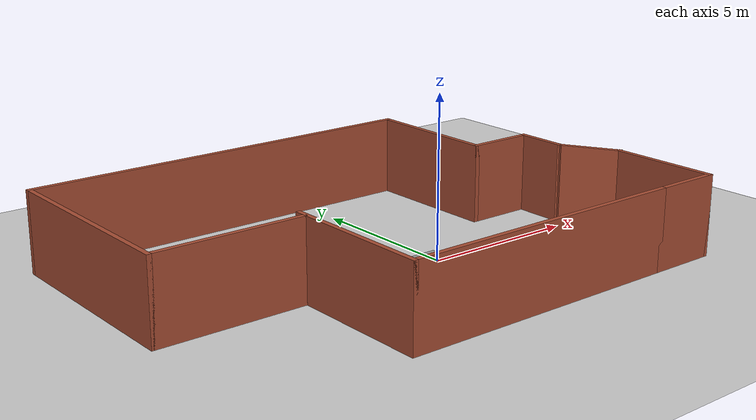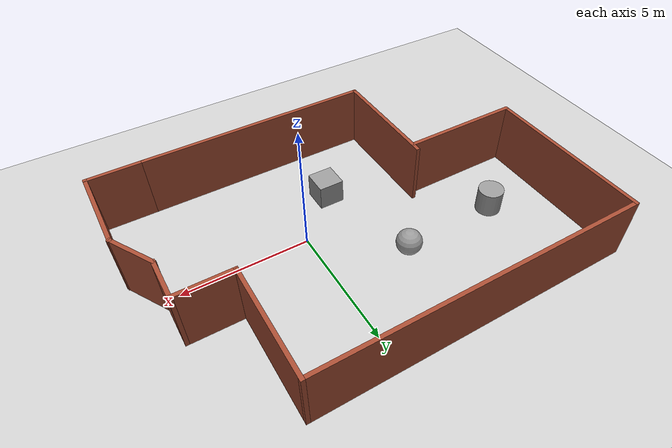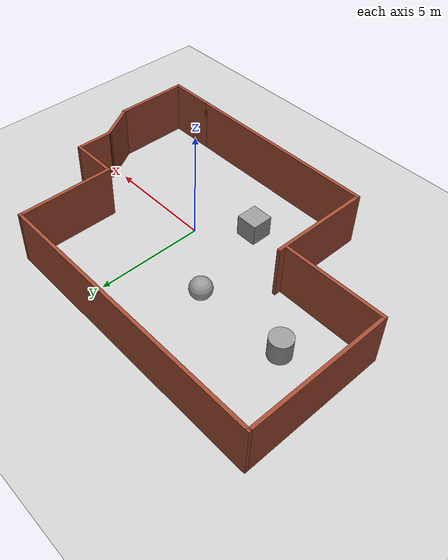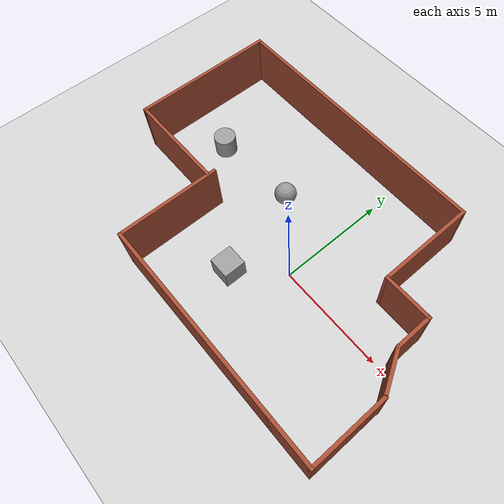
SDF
<sdf version="1.7">
 <world name="default">
  <light name="sun" type="directional">
   <pose>0 0 10 0 -0 0</pose>
   <diffuse>0.8 0.8 0.8 1</diffuse>
   <specular>0.2 0.2 0.2 1</specular>
   <attenuation>
    <range>1000</range>
    <constant>0.9</constant>
    <linear>0.01</linear>
    <quadratic>0.001</quadratic>
   </attenuation>
   <direction>-0.5 0.1 -0.9</direction>
   <spot><inner_angle>0</inner_angle><outer_angle>0</outer_angle><falloff>0</falloff></spot>
  </light>
  <model name="ground_plane">
   <static>1</static>
   <link name="link">
    <collision name="collision">
     <geometry><plane><normal>0 0 1</normal><size>100 100</size></plane></geometry>
     <surface>
      <contact><collide_bitmask>65535</collide_bitmask></contact>
      <friction><ode><mu>100</mu><mu2>50</mu2></ode></friction>
     </surface>
    </collision>
    <visual name="visual">
     <cast_shadows>0</cast_shadows>
     <geometry><plane><normal>0 0 1</normal><size>100 100</size></plane></geometry>
     <material>
      <script><uri>file://media/materials/scripts/gazebo.material</uri><name>Gazebo/Grey</name></script>
     </material>
    </visual>
   </link>
  </model>
  <gravity>0 0 -9.8</gravity>
  <magnetic_field>6e-06 2.3e-05 -4.2e-05</magnetic_field>
  <atmosphere type="adiabatic"/>
  <physics type="ode">
   <max_step_size>0.001</max_step_size>
   <real_time_factor>1</real_time_factor>
   <real_time_update_rate>1000</real_time_update_rate>
  </physics>
  <scene><ambient>0.4 0.4 0.4 1</ambient><background>0.7 0.7 0.7 1</background><shadows>1</shadows></scene>
  <audio><device>default</device></audio>
  <spherical_coordinates>
   <surface_model>EARTH_WGS84</surface_model>
   <latitude_deg>0</latitude_deg>
   <longitude_deg>0</longitude_deg>
   <elevation>0</elevation>
   <heading_deg>0</heading_deg>
  </spherical_coordinates>
  <model name="mywall">
   <pose>-1.55844 0.882143 0 0 -0 0</pose>
   <link name="Wall_0">
    <collision name="Wall_0_Collision">
     <geometry><box><size>4.75 0.15 2.5</size></box></geometry>
     <pose>0 0 1.25 0 -0 0</pose>
    </collision>
    <visual name="Wall_0_Visual">
     <pose>0 0 1.25 0 -0 0</pose>
     <geometry><box><size>4.75 0.15 2.5</size></box></geometry>
     <material>
      <script><uri>file://media/materials/scripts/gazebo.material</uri><name>Gazebo/Bricks</name></script>
      <ambient>1 1 1 1</ambient>
     </material>
     <meta><layer>0</layer></meta>
    </visual>
    <pose>-3.27623 -3.15107 0 0 -0 -1.5708</pose>
   </link>
   <link name="Wall_1">
    <collision name="Wall_1_Collision">
     <geometry><box><size>9.25 0.15 2.5</size></box></geometry>
     <pose>0 0 1.25 0 -0 0</pose>
    </collision>
    <visual name="Wall_1_Visual">
     <pose>0 0 1.25 0 -0 0</pose>
     <geometry><box><size>9.25 0.15 2.5</size></box></geometry>
     <material>
      <script><uri>file://media/materials/scripts/gazebo.material</uri><name>Gazebo/Bricks</name></script>
      <ambient>1 1 1 1</ambient>
     </material>
     <meta><layer>0</layer></meta>
    </visual>
    <pose>1.27378 -5.45107 0 0 -0 0</pose>
   </link>
   <link name="Wall_10">
    <collision name="Wall_10_Collision">
     <geometry><box><size>4.75 0.15 2.5</size></box></geometry>
     <pose>0 0 1.25 0 -0 0</pose>
    </collision>
    <visual name="Wall_10_Visual">
     <pose>0 0 1.25 0 -0 0</pose>
     <geometry><box><size>4.75 0.15 2.5</size></box></geometry>
     <material>
      <script><uri>file://media/materials/scripts/gazebo.material</uri><name>Gazebo/Bricks</name></script>
      <ambient>1 1 1 1</ambient>
     </material>
     <meta><layer>0</layer></meta>
    </visual>
    <pose>-5.65123 -1.14893 0 0 -0 0</pose>
   </link>
   <link name="Wall_2">
    <collision name="Wall_2_Collision">
     <geometry><box><size>2.25 0.15 2.5</size></box></geometry>
     <pose>0 0 1.25 0 -0 0</pose>
    </collision>
    <visual name="Wall_2_Visual">
     <pose>0 0 1.25 0 -0 0</pose>
     <geometry><box><size>2.25 0.15 2.5</size></box></geometry>
     <material>
      <script><uri>file://media/materials/scripts/gazebo.material</uri><name>Gazebo/Bricks</name></script>
      <ambient>1 1 1 1</ambient>
     </material>
     <meta><layer>0</layer></meta>
    </visual>
    <pose>6.87378 -5.45107 0 0 -0 0</pose>
   </link>
   <link name="Wall_3">
    <collision name="Wall_3_Collision">
     <geometry><box><size>3.5 0.15 2.5</size></box></geometry>
     <pose>0 0 1.25 0 -0 0</pose>
    </collision>
    <visual name="Wall_3_Visual">
     <pose>0 0 1.25 0 -0 0</pose>
     <geometry><box><size>3.5 0.15 2.5</size></box></geometry>
     <material>
      <script><uri>file://media/materials/scripts/gazebo.material</uri><name>Gazebo/Bricks</name></script>
      <ambient>1 1 1 1</ambient>
     </material>
     <meta><layer>0</layer></meta>
    </visual>
    <pose>7.92377 -3.77607 0 0 -0 1.5708</pose>
   </link>
   <link name="Wall_4">
    <collision name="Wall_4_Collision">
     <geometry><box><size>2 0.15 2.5</size></box></geometry>
     <pose>0 0 1.25 0 -0 0</pose>
    </collision>
    <visual name="Wall_4_Visual">
     <pose>0 0 1.25 0 -0 0</pose>
     <geometry><box><size>2 0.15 2.5</size></box></geometry>
     <material>
      <script><uri>file://media/materials/scripts/gazebo.material</uri><name>Gazebo/Bricks</name></script>
      <ambient>1 1 1 1</ambient>
     </material>
     <meta><layer>0</layer></meta>
    </visual>
    <pose>7.46127 -1.3 0 0 -0 2.0944</pose>
   </link>
   <link name="Wall_5">
    <collision name="Wall_5_Collision">
     <geometry><box><size>1.75 0.15 2.5</size></box></geometry>
     <pose>0 0 1.25 0 -0 0</pose>
    </collision>
    <visual name="Wall_5_Visual">
     <pose>0 0 1.25 0 -0 0</pose>
     <geometry><box><size>1.75 0.15 2.5</size></box></geometry>
     <material>
      <script><uri>file://media/materials/scripts/gazebo.material</uri><name>Gazebo/Bricks</name></script>
      <ambient>1 1 1 1</ambient>
     </material>
     <meta><layer>0</layer></meta>
    </visual>
    <pose>6.99878 0.301073 0 0 -0 1.5708</pose>
   </link>
   <link name="Wall_6">
    <collision name="Wall_6_Collision">
     <geometry><box><size>2.25 0.15 2.5</size></box></geometry>
     <pose>0 0 1.25 0 -0 0</pose>
    </collision>
    <visual name="Wall_6_Visual">
     <pose>0 0 1.25 0 -0 0</pose>
     <geometry><box><size>2.25 0.15 2.5</size></box></geometry>
     <material>
      <script><uri>file://media/materials/scripts/gazebo.material</uri><name>Gazebo/Bricks</name></script>
      <ambient>1 1 1 1</ambient>
     </material>
     <meta><layer>0</layer></meta>
    </visual>
    <pose>5.94878 1.10107 0 0 -0 3.14159</pose>
   </link>
   <link name="Wall_7">
    <collision name="Wall_7_Collision">
     <geometry><box><size>4.5 0.15 2.5</size></box></geometry>
     <pose>0 0 1.25 0 -0 0</pose>
    </collision>
    <visual name="Wall_7_Visual">
     <pose>0 0 1.25 0 -0 0</pose>
     <geometry><box><size>4.5 0.15 2.5</size></box></geometry>
     <material>
      <script><uri>file://media/materials/scripts/gazebo.material</uri><name>Gazebo/Bricks</name></script>
      <ambient>1 1 1 1</ambient>
     </material>
     <meta><layer>0</layer></meta>
    </visual>
    <pose>4.89877 3.27607 0 0 -0 1.5708</pose>
   </link>
   <link name="Wall_8">
    <collision name="Wall_8_Collision">
     <geometry><box><size>13 0.15 2.5</size></box></geometry>
     <pose>0 0 1.25 0 -0 0</pose>
    </collision>
    <visual name="Wall_8_Visual">
     <pose>0 0 1.25 0 -0 0</pose>
     <geometry><box><size>13 0.15 2.5</size></box></geometry>
     <material>
      <script><uri>file://media/materials/scripts/gazebo.material</uri><name>Gazebo/Bricks</name></script>
      <ambient>1 1 1 1</ambient>
     </material>
     <meta><layer>0</layer></meta>
    </visual>
    <pose>-1.52622 5.45107 0 0 -0 3.14159</pose>
   </link>
   <link name="Wall_9">
    <collision name="Wall_9_Collision">
     <geometry><box><size>6.75 0.15 2.5</size></box></geometry>
     <pose>0 0 1.25 0 -0 0</pose>
    </collision>
    <visual name="Wall_9_Visual">
     <pose>0 0 1.25 0 -0 0</pose>
     <geometry><box><size>6.75 0.15 2.5</size></box></geometry>
     <material>
      <script><uri>file://media/materials/scripts/gazebo.material</uri><name>Gazebo/Bricks</name></script>
      <ambient>1 1 1 1</ambient>
     </material>
     <meta><layer>0</layer></meta>
    </visual>
    <pose>-7.95123 2.15107 0 0 -0 -1.5708</pose>
   </link>
   <static>1</static>
  </model>
  <model name="unit_sphere">
   <pose>-2.99618 2.36701 0.5 0 -0 0</pose>
   <link name="link">
    <inertial>
     <mass>1</mass>
     <inertia><ixx>0.1</ixx><ixy>0</ixy><ixz>0</ixz><iyy>0.1</iyy><iyz>0</iyz><izz>0.1</izz></inertia>
    </inertial>
    <collision name="collision"><geometry><sphere><radius>0.5</radius></sphere></geometry></collision>
    <visual name="visual">
     <geometry><sphere><radius>0.5</radius></sphere></geometry>
     <material>
      <script><name>Gazebo/Grey</name><uri>file://media/materials/scripts/gazebo.material</uri></script>
     </material>
    </visual>
   </link>
  </model>
  <model name="unit_cylinder">
   <pose>-7.03863 2.09203 0.499993 -3e-06 -4e-06 -0</pose>
   <link name="link">
    <inertial>
     <mass>1</mass>
     <inertia><ixx>0.145833</ixx><ixy>0</ixy><ixz>0</ixz><iyy>0.145833</iyy><iyz>0</iyz><izz>0.125</izz></inertia>
    </inertial>
    <collision name="collision">
     <geometry><cylinder><radius>0.5</radius><length>1</length></cylinder></geometry>
    </collision>
    <visual name="visual">
     <geometry><cylinder><radius>0.5</radius><length>1</length></cylinder></geometry>
     <material>
      <script><name>Gazebo/Grey</name><uri>file://media/materials/scripts/gazebo.material</uri></script>
     </material>
    </visual>
   </link>
  </model>
  <model name="unit_box">
   <pose>-1.80953 -1.78549 0.5 0 -0 0</pose>
   <link name="link">
    <inertial>
     <mass>1</mass>
     <inertia>
      <ixx>0.166667</ixx>
      <ixy>0</ixy>
      <ixz>0</ixz>
      <iyy>0.166667</iyy>
      <iyz>0</iyz>
      <izz>0.166667</izz>
     </inertia>
    </inertial>
    <collision name="collision"><geometry><box><size>1 1 1</size></box></geometry></collision>
    <visual name="visual">
     <geometry><box><size>1 1 1</size></box></geometry>
     <material>
      <script><name>Gazebo/Grey</name><uri>file://media/materials/scripts/gazebo.material</uri></script>
     </material>
    </visual>
   </link>
  </model>
 </world>
</sdf>
